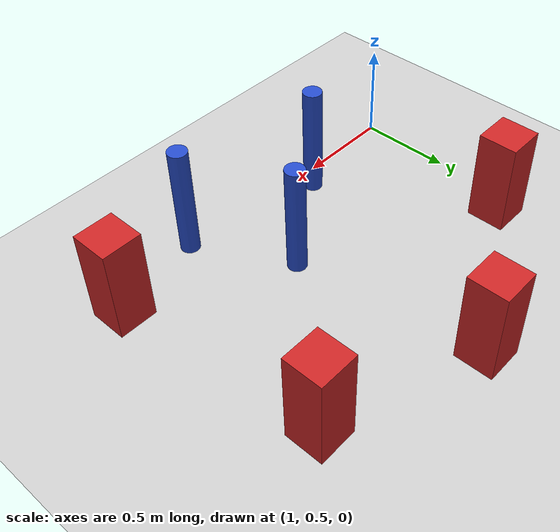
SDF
<sdf version="1.6">
 <world name="default">
  <model name="ground_plane">
   <static>1</static>
   <link name="link">
    <collision name="collision">
     <geometry><plane><normal>0 0 1</normal><size>100 100</size></plane></geometry>
     <surface><friction><ode><mu>100</mu><mu2>50</mu2></ode></friction></surface>
    </collision>
    <visual name="visual">
     <cast_shadows>0</cast_shadows>
     <geometry><plane><normal>0 0 1</normal><size>100 100</size></plane></geometry>
     <material>
      <ambient>1.0 1.0 1.0 1.0</ambient>
      <diffuse>0.8 0.8 0.8 1.0</diffuse>
      <specular>0.01 0.01 0.01 1.000000</specular>
     </material>
    </visual>
   </link>
  </model>
  <model name="square_post_obstacle28">
   <static>true</static>
   <pose>2.8446491433 0.557461522699 1.91545236811e-07 -7.35059704564e-06 1.12565212e-07 2.39332434364e-05</pose>
   <link name="link">
    <pose>0 0 0.25 0 -0 0</pose>
    <inertial>
     <mass>100</mass>
     <inertia>
      <ixx>0.166667</ixx>
      <ixy>0</ixy>
      <ixz>0</ixz>
      <iyy>0.166667</iyy>
      <iyz>0</iyz>
      <izz>0.166667</izz>
     </inertia>
    </inertial>
    <collision name="collision"><geometry><box><size>.2 .2 .5</size></box></geometry></collision>
    <visual name="visual">
     <geometry><box><size>.2 .2 .5</size></box></geometry>
     <material>
      <script><name>Gazebo/Red</name><uri>file://media/materials/scripts/gazebo.material</uri></script>
     </material>
    </visual>
   </link>
  </model>
  <model name="square_post_obstacle46">
   <static>true</static>
   <pose>1.1268990977 1.43719392636 1.91545236811e-07 -7.35059704564e-06 1.12565212e-07 2.39332434364e-05</pose>
   <link name="link">
    <pose>0 0 0.25 0 -0 0</pose>
    <inertial>
     <mass>100</mass>
     <inertia>
      <ixx>0.166667</ixx>
      <ixy>0</ixy>
      <ixz>0</ixz>
      <iyy>0.166667</iyy>
      <iyz>0</iyz>
      <izz>0.166667</izz>
     </inertia>
    </inertial>
    <collision name="collision"><geometry><box><size>.2 .2 .5</size></box></geometry></collision>
    <visual name="visual">
     <geometry><box><size>.2 .2 .5</size></box></geometry>
     <material>
      <script><name>Gazebo/Red</name><uri>file://media/materials/scripts/gazebo.material</uri></script>
     </material>
    </visual>
   </link>
  </model>
  <model name="pole_obstacle50">
   <static>true</static>
   <pose>2.08983961861 0.932811466413 7.38925637345e-09 -8.471706928e-08 1.24976765177e-08 -1.74513093012e-07</pose>
   <link name="link">
    <pose>0 0 0.3 0 -0 0</pose>
    <inertial>
     <mass>1</mass>
     <inertia><ixx>0.145833</ixx><ixy>0</ixy><ixz>0</ixz><iyy>0.145833</iyy><iyz>0</iyz><izz>0.125</izz></inertia>
    </inertial>
    <collision name="collision">
     <geometry><cylinder><radius>0.05</radius><length>.6</length></cylinder></geometry>
    </collision>
    <visual name="visual">
     <geometry><cylinder><radius>0.05</radius><length>.6</length></cylinder></geometry>
     <material>
      <script><name>Gazebo/Blue</name><uri>file://media/materials/scripts/gazebo.material</uri></script>
     </material>
    </visual>
   </link>
  </model>
  <model name="square_post_obstacle83">
   <static>true</static>
   <pose>2.7231310962 1.64685840307 1.91545236811e-07 -7.35059704564e-06 1.12565212e-07 2.39332434364e-05</pose>
   <link name="link">
    <pose>0 0 0.25 0 -0 0</pose>
    <inertial>
     <mass>100</mass>
     <inertia>
      <ixx>0.166667</ixx>
      <ixy>0</ixy>
      <ixz>0</ixz>
      <iyy>0.166667</iyy>
      <iyz>0</iyz>
      <izz>0.166667</izz>
     </inertia>
    </inertial>
    <collision name="collision"><geometry><box><size>.2 .2 .5</size></box></geometry></collision>
    <visual name="visual">
     <geometry><box><size>.2 .2 .5</size></box></geometry>
     <material>
      <script><name>Gazebo/Red</name><uri>file://media/materials/scripts/gazebo.material</uri></script>
     </material>
    </visual>
   </link>
  </model>
  <model name="pole_obstacle150">
   <static>true</static>
   <pose>2.35005580184 0.451482720268 7.38925637345e-09 -8.47170692801e-08 1.24976765209e-08 -1.74513093011e-07</pose>
   <link name="link">
    <pose>0 0 0.3 0 -0 0</pose>
    <inertial>
     <mass>1</mass>
     <inertia><ixx>0.145833</ixx><ixy>0</ixy><ixz>0</ixz><iyy>0.145833</iyy><iyz>0</iyz><izz>0.125</izz></inertia>
    </inertial>
    <collision name="collision">
     <geometry><cylinder><radius>0.05</radius><length>.6</length></cylinder></geometry>
    </collision>
    <visual name="visual">
     <geometry><cylinder><radius>0.05</radius><length>.6</length></cylinder></geometry>
     <material>
      <script><name>Gazebo/Blue</name><uri>file://media/materials/scripts/gazebo.material</uri></script>
     </material>
    </visual>
   </link>
  </model>
  <model name="square_post_obstacle148">
   <static>true</static>
   <pose>1.93762553083 1.9195149981 1.91545236811e-07 -7.35059704564e-06 1.12565212e-07 2.39332434364e-05</pose>
   <link name="link">
    <pose>0 0 0.25 0 -0 0</pose>
    <inertial>
     <mass>100</mass>
     <inertia>
      <ixx>0.166667</ixx>
      <ixy>0</ixy>
      <ixz>0</ixz>
      <iyy>0.166667</iyy>
      <iyz>0</iyz>
      <izz>0.166667</izz>
     </inertia>
    </inertial>
    <collision name="collision"><geometry><box><size>.2 .2 .5</size></box></geometry></collision>
    <visual name="visual">
     <geometry><box><size>.2 .2 .5</size></box></geometry>
     <material>
      <script><name>Gazebo/Red</name><uri>file://media/materials/scripts/gazebo.material</uri></script>
     </material>
    </visual>
   </link>
  </model>
  <model name="pole_obstacle199">
   <static>true</static>
   <pose>1.59786004734 0.590227375624 7.38925637345e-09 -8.47170692799e-08 1.24976765075e-08 -1.74513093017e-07</pose>
   <link name="link">
    <pose>0 0 0.3 0 -0 0</pose>
    <inertial>
     <mass>1</mass>
     <inertia><ixx>0.145833</ixx><ixy>0</ixy><ixz>0</ixz><iyy>0.145833</iyy><iyz>0</iyz><izz>0.125</izz></inertia>
    </inertial>
    <collision name="collision">
     <geometry><cylinder><radius>0.05</radius><length>.6</length></cylinder></geometry>
    </collision>
    <visual name="visual">
     <geometry><cylinder><radius>0.05</radius><length>.6</length></cylinder></geometry>
     <material>
      <script><name>Gazebo/Blue</name><uri>file://media/materials/scripts/gazebo.material</uri></script>
     </material>
    </visual>
   </link>
  </model>
 </world>
</sdf>
